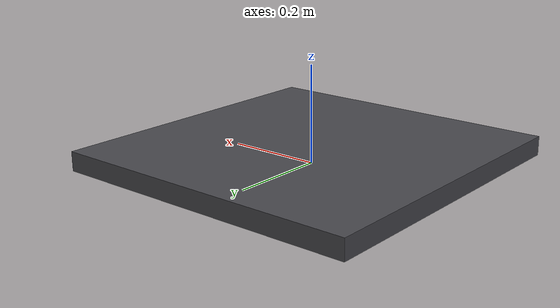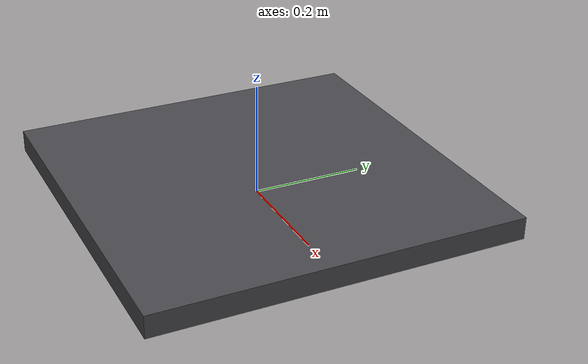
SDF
<?xml version="1.0" ?>
<sdf version="1.6">
  <model name="ceiling_light_panel">
    <static>true</static>

    <link name="panel_link">
      <!-- Housing bezel -->
      <visual name="bezel_vis">
        <pose>0 0 0.02 0 0 0</pose>
        <geometry><box><size>0.66 0.66 0.04</size></box></geometry>
        <material><ambient>0.20 0.20 0.22 1</ambient><diffuse>0.28 0.28 0.30 1</diffuse><specular>0.30 0.30 0.32 1</specular></material>
      </visual>
      <!-- Emissive diffuser face (warm white glow) -->
      <visual name="diffuser_vis">
        <pose>0 0 0.0 0 0 0</pose>
        <geometry><box><size>0.60 0.60 0.02</size></box></geometry>
        <material>
          <ambient>0.90 0.86 0.78 1</ambient>
          <diffuse>1.0 0.96 0.88 1</diffuse>
          <emissive>1.0 0.95 0.85 1</emissive>
        </material>
      </visual>

      <!-- Actual light source: warm, soft, downward -->
      <light name="panel_light" type="point">
        <pose>0 0 -0.05 0 0 0</pose>
        <diffuse>0.85 0.82 0.75 1</diffuse>
        <specular>0.25 0.24 0.22 1</specular>
        <attenuation>
          <range>7.0</range>
          <constant>0.4</constant>
          <linear>0.12</linear>
          <quadratic>0.02</quadratic>
        </attenuation>
        <cast_shadows>false</cast_shadows>
      </light>
    </link>
  </model>
</sdf>
